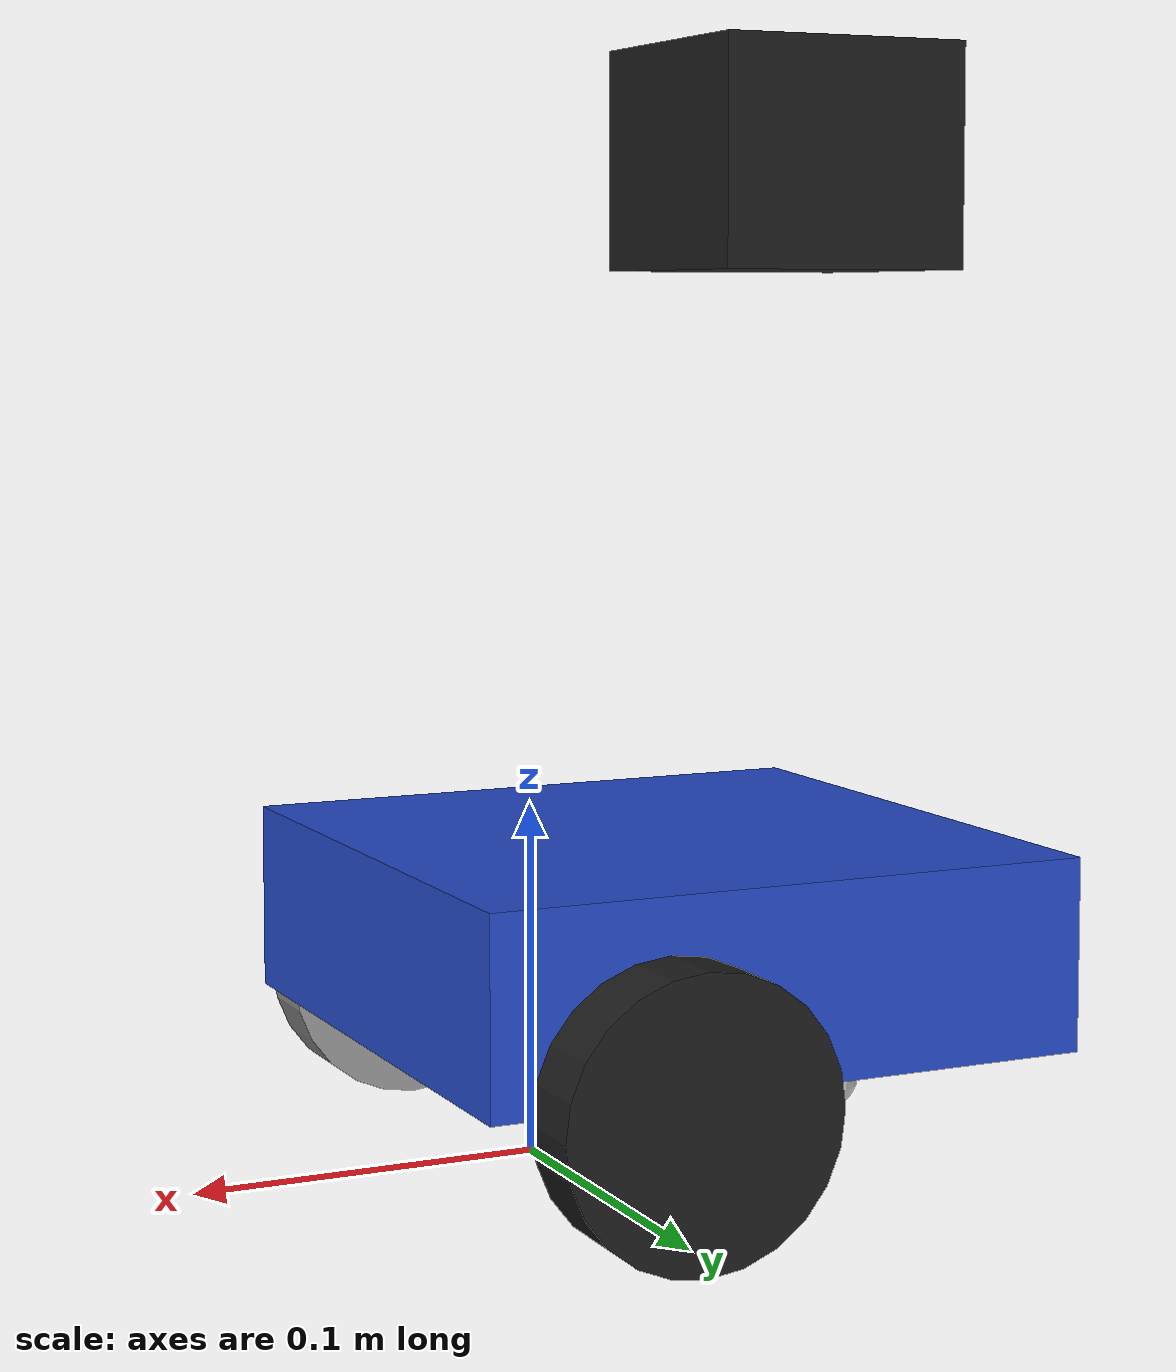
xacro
<?xml version="1.0"?>
<!-- Basic differential drive mobile base -->
<robot xmlns:xacro="http://www.ros.org/wiki/xacro" name="diffdrive_robot">
  <xacro:arg name="prefix" default="" />
  <xacro:arg name="use_mock_hardware" default="false" />
  <xacro:arg name="dynamixel_port" default="/dev/dxhub" />
  <xacro:arg name="dynamixel_baud_rate" default="1000000" />
  <!-- Must match Hesai driver's ros.ros_frame_id (Issue #30). -->
  <xacro:arg name="jt16_link_name" default="hesai_lidar" />
  <!-- Measured from sanehal_base_link to the JT16 bottom-center datum. -->
  <xacro:arg name="jt16_xyz" default="-0.080 0 0.250" />
  <xacro:arg name="jt16_rpy" default="0 0 0" />

  <xacro:include filename="$(find sanehal_vehicle_description)/urdf/sanehal.xacro" />

  <!-- Import Rviz colors -->
  <xacro:include filename="$(find sanehal_vehicle_description)/gazebo/sanehal.materials.xacro" />

  <!-- Import sanehal ros2_control description -->
  <xacro:include filename="$(find sanehal_vehicle_description)/ros2_control/sanehal.ros2_control.xacro" />

  <link name="$(arg prefix)base_footprint" />
  <link name="$(arg prefix)base_link" />
  <joint name="$(arg prefix)base_footprint_joint" type="fixed">
    <parent link="$(arg prefix)base_footprint" />
    <child link="$(arg prefix)base_link" />
    <origin xyz="0 0 0" rpy="0 0 0" />
  </joint>
  <xacro:sanehal
      prefix="$(arg prefix)"
      jt16_link_name="$(arg jt16_link_name)"
      jt16_xyz="$(arg jt16_xyz)"
      jt16_rpy="$(arg jt16_rpy)"
      parent="$(arg prefix)base_link">
    <origin
        xyz="0 0 0"
        rpy="0 0 0" />
  </xacro:sanehal>
  <xacro:sanehal_ros2_control
    name="Sanehal"
    prefix="$(arg prefix)"
    use_mock_hardware="$(arg use_mock_hardware)"
    dynamixel_port="$(arg dynamixel_port)"
    dynamixel_baud_rate="$(arg dynamixel_baud_rate)" />

</robot>

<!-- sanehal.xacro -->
<robot xmlns:xacro="http://www.ros.org/wiki/xacro">
    <!-- ロボットの表示を行う本体部分 -->
    <xacro:macro name="sanehal" params="prefix parent jt16_link_name:=hesai_lidar jt16_xyz:='0 0 0' jt16_rpy:='0 0 0' *origin">
    <!-- Constants for robot dimensions -->
    <xacro:property name="PI" value="3.1415926535897931"/>
    <xacro:property name="base_mass" value="2.0" /> <!-- arbitrary value for base mass -->
    <xacro:property name="base_width" value="0.176" />
    <xacro:property name="base_length" value="0.175" />
    <xacro:property name="base_height" value="0.0545" />
    <xacro:property name="base_x_offset" value="-0.03825" />
    <xacro:property name="base_ground_clearance" value="0.035" />

    <xacro:property name="wheel_mass" value="0.100" /> <!-- arbitrary value for wheel mass -->
    <xacro:property name="wheel_len" value="0.021" />
    <xacro:property name="wheel_radius" value="0.0395" />
    <xacro:property name="wheel_x_offset" value="0.0" />
    <xacro:property name="wheel_y_offset" value="0.100" />
    <xacro:property name="wheel_z_offset" value="0.035" />
    <xacro:property name="caster_wheel_mass" value="0.03" /> <!-- arbitrary value for caster wheel mass -->
    <xacro:property name="caster_wheel_x_offset" value="-0.09325" />
    <xacro:property name="caster_wheel_y_offset" value="0.0" />
    <xacro:property name="caster_wheel_z_offset" value="0.0124" />
    <xacro:property name="caster_wheel_radius" value="0.0124" />
    <xacro:property name="jt16_length" value="0.075" />
    <xacro:property name="jt16_width" value="0.075" />
    <xacro:property name="jt16_height" value="0.064" />

    <!-- Base Link -->
    <link name="${prefix}sanehal_base_link">
      <collision>
        <origin xyz="${base_x_offset} 0 ${base_ground_clearance + base_height/2}" rpy="0 0 0"/>
        <geometry>
          <box size="${base_width} ${base_length} ${base_height}"/>
        </geometry>
      </collision>

      <visual>
        <origin xyz="${base_x_offset} 0 ${base_ground_clearance + base_height/2}" rpy="0 0 0"/>
        <geometry>
          <box size="${base_width} ${base_length} ${base_height}"/>
        </geometry>
        <material name="blue"/>
      </visual>

      <inertial>
        <origin xyz="${base_x_offset} 0 ${base_ground_clearance + base_height/2}" rpy="0 0 0"/>
        <mass value="${base_mass}"/>
        <inertia
          ixx="${base_mass / 12.0 * (base_length*base_length + base_height*base_height)}" ixy="0.0" ixz="0.0"
          iyy="${base_mass / 12.0 * (base_height*base_height + base_width*base_width)}" iyz="0.0"
          izz="${base_mass / 12.0 * (base_width*base_width + base_length*base_length)}"/>
        </inertial>
    </link>

    <link name="${prefix}${jt16_link_name}">
      <visual>
        <origin xyz="0 0 ${jt16_height / 2.0}" rpy="0 0 0" />
        <geometry>
          <box size="${jt16_length} ${jt16_width} ${jt16_height}" />
        </geometry>
        <material name="black" />
      </visual>
      <collision>
        <origin xyz="0 0 ${jt16_height / 2.0}" rpy="0 0 0" />
        <geometry>
          <box size="${jt16_length} ${jt16_width} ${jt16_height}" />
        </geometry>
      </collision>
    </link>

    <joint name="${prefix}jt16_joint" type="fixed">
      <parent link="${prefix}sanehal_base_link" />
      <child link="${prefix}${jt16_link_name}" />
      <origin xyz="${jt16_xyz}" rpy="${jt16_rpy}" />
    </joint>

    <!-- left wheel Link -->
    <link name="${prefix}left_wheel">
      <collision>
        <origin xyz="0 0 0" rpy="${PI/2} 0 0"/>
        <geometry>
          <cylinder length="${wheel_len}" radius="${wheel_radius}"/>
        </geometry>
      </collision>

      <visual>
        <origin xyz="0 0 0" rpy="${PI/2} 0 0"/>
        <geometry>
          <cylinder length="${wheel_len}" radius="${wheel_radius}"/>
        </geometry>
        <material name="black"/>
      </visual>

      <inertial>
        <origin xyz="0 0 0" rpy="${PI/2} 0 0"/>
        <mass value="${wheel_mass}"/>
        <inertia
          ixx="${wheel_mass / 12.0 * (3*wheel_radius*wheel_radius + wheel_len*wheel_len)}" ixy="0.0" ixz="0.0"
          iyy="${wheel_mass / 12.0 * (3*wheel_radius*wheel_radius + wheel_len*wheel_len)}" iyz="0.0"
          izz="${wheel_mass / 2.0 * wheel_radius*wheel_radius}"/>
        </inertial>
    </link>

    <!-- right wheel Link -->
    <link name="${prefix}right_wheel">
      <collision>
        <origin xyz="0 0 0" rpy="${PI/2} 0 0"/>
        <geometry>
          <cylinder length="${wheel_len}" radius="${wheel_radius}"/>
        </geometry>
      </collision>

      <visual>
        <origin xyz="0 0 0" rpy="${PI/2} 0 0"/>
        <geometry>
          <cylinder length="${wheel_len}" radius="${wheel_radius}"/>
        </geometry>
        <material name="grey"/>
      </visual>

      <inertial>
        <origin xyz="0 0 0" rpy="${PI/2} 0 0"/>
        <mass value="${wheel_mass}"/>
        <inertia
          ixx="${wheel_mass / 12.0 * (3*wheel_radius*wheel_radius + wheel_len*wheel_len)}" ixy="0.0" ixz="0.0"
          iyy="${wheel_mass / 12.0 * (3*wheel_radius*wheel_radius + wheel_len*wheel_len)}" iyz="0.0"
          izz="${wheel_mass / 2.0 * wheel_radius*wheel_radius}"/>
        </inertial>
    </link>

    <!-- caster rear wheel Link -->
    <link name="${prefix}caster_rear_wheel">
      <collision>
        <origin xyz="0 0 0" rpy="0 0 0"/>
        <geometry>
          <sphere radius="${caster_wheel_radius}"/>
        </geometry>
      </collision>

      <visual>
        <origin xyz="0 0 0" rpy="0 0 0"/>
        <geometry>
          <sphere radius="${caster_wheel_radius}"/>
        </geometry>
        <material name="white"/>
      </visual>

      <inertial>
        <origin xyz="0 0 0" rpy="0 0 0"/>
        <mass value="${caster_wheel_mass}"/>
        <inertia
          ixx="${caster_wheel_mass * 0.4 * (caster_wheel_radius * caster_wheel_radius)}" ixy="0.0" ixz="0.0"
          iyy="${caster_wheel_mass * 0.4 * (caster_wheel_radius * caster_wheel_radius)}" iyz="0.0"
          izz="${caster_wheel_mass * 0.4 * (caster_wheel_radius * caster_wheel_radius)}"/>
        </inertial>
    </link>

    <!-- joints -->

    <joint
        name="${prefix}base_joint"
        type="fixed">
      <parent link="${parent}" />
      <child link="${prefix}sanehal_base_link" />
      <xacro:insert_block name="origin" />
    </joint>

    <joint name="${prefix}left_wheel_joint" type="continuous">
      <parent link="${prefix}sanehal_base_link"/>
      <child link="${prefix}left_wheel"/>
      <origin xyz="${wheel_x_offset} ${wheel_y_offset} ${wheel_z_offset}" rpy="0 0 0"/>
      <axis xyz="0 1 0"/>
      <dynamics damping="0.2"/>
    </joint>

    <joint name="${prefix}right_wheel_joint" type="continuous">
      <parent link="${prefix}sanehal_base_link"/>
      <child link="${prefix}right_wheel"/>
      <!-- Keep positive joint rotation aligned with the left wheel (+Y in base frame). -->
      <origin xyz="${wheel_x_offset} -${wheel_y_offset} ${wheel_z_offset}" rpy="0 0 0"/>
      <axis xyz="0 1 0"/>
      <dynamics damping="0.2"/>
    </joint>

    <joint name="${prefix}caster_rear_wheel_joint" type="fixed">
      <parent link="${prefix}sanehal_base_link"/>
      <child link="${prefix}caster_rear_wheel"/>
      <origin xyz="${caster_wheel_x_offset} ${caster_wheel_y_offset} ${caster_wheel_z_offset}" rpy="0 0 0"/>
    </joint>
  </xacro:macro>

</robot>
